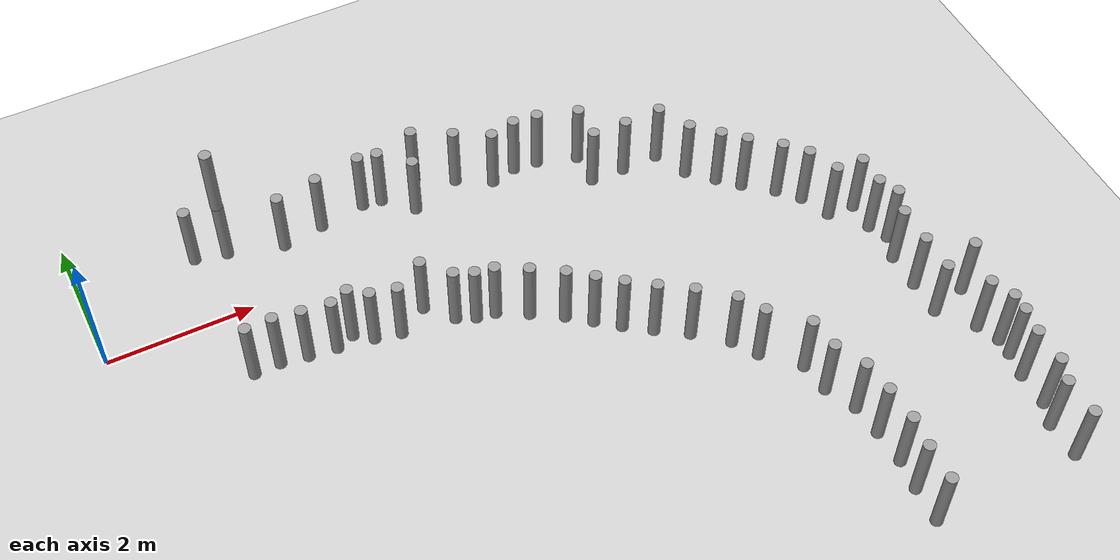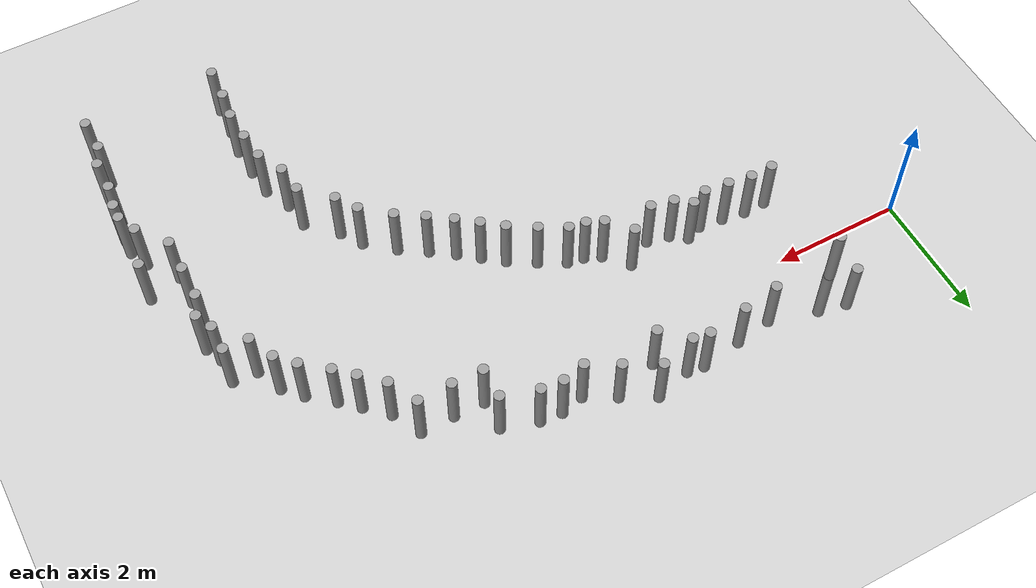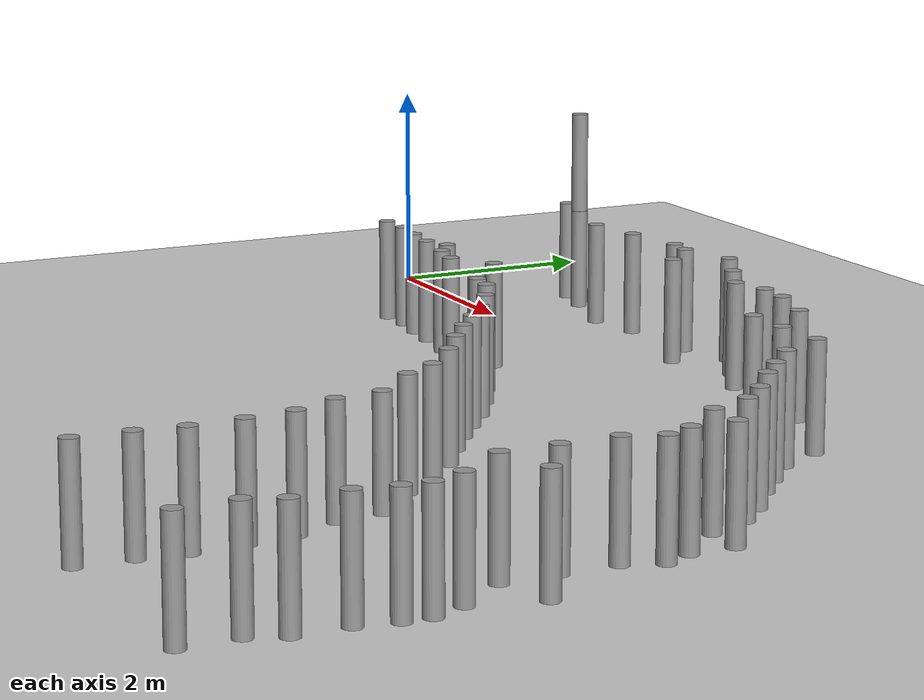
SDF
<sdf version="1.6">
 <world name="default">
  <model name="ground_plane">
   <static>1</static>
   <link name="link">
    <collision name="collision">
     <geometry><plane><normal>0 0 1</normal><size>100 100</size></plane></geometry>
     <surface><friction><ode><mu>100</mu><mu2>50</mu2></ode></friction></surface>
    </collision>
    <visual name="visual">
     <cast_shadows>0</cast_shadows>
     <geometry><plane><normal>0 0 1</normal><size>100 100</size></plane></geometry>
     <material>
      <script><uri>file://media/materials/scripts/gazebo.material</uri><name>Gazebo/Grey</name></script>
     </material>
    </visual>
   </link>
  </model>
  <model name="unit_cylinder_0_clone_clone_0">
   <pose>1.64335 -1.00984 0.499996 0 -0 0.005383</pose>
   <link name="link">
    <inertial>
     <mass>1</mass>
     <inertia><ixx>0.145833</ixx><ixy>0</ixy><ixz>0</ixz><iyy>0.145833</iyy><iyz>0</iyz><izz>0.125</izz></inertia>
    </inertial>
    <collision name="collision">
     <geometry><cylinder><radius>0.0811363</radius><length>1</length></cylinder></geometry>
    </collision>
    <visual name="visual">
     <geometry><cylinder><radius>0.0811363</radius><length>1</length></cylinder></geometry>
     <material>
      <script><name>Gazebo/Grey</name><uri>file://media/materials/scripts/gazebo.material</uri></script>
     </material>
    </visual>
   </link>
  </model>
  <model name="unit_cylinder_0_clone_clone_1">
   <pose>2 -0.999981 0.499996 0 -0 0.001293</pose>
   <link name="link">
    <inertial>
     <mass>1</mass>
     <inertia><ixx>0.145833</ixx><ixy>0</ixy><ixz>0</ixz><iyy>0.145833</iyy><iyz>0</iyz><izz>0.125</izz></inertia>
    </inertial>
    <collision name="collision">
     <geometry><cylinder><radius>0.0811363</radius><length>1</length></cylinder></geometry>
    </collision>
    <visual name="visual">
     <geometry><cylinder><radius>0.0811363</radius><length>1</length></cylinder></geometry>
     <material>
      <script><name>Gazebo/Grey</name><uri>file://media/materials/scripts/gazebo.material</uri></script>
     </material>
    </visual>
   </link>
  </model>
  <model name="unit_cylinder_0_clone_clone_2">
   <pose>2.36742 -1.05536 0.499996 0 -0 0.00225</pose>
   <link name="link">
    <inertial>
     <mass>1</mass>
     <inertia><ixx>0.145833</ixx><ixy>0</ixy><ixz>0</ixz><iyy>0.145833</iyy><iyz>0</iyz><izz>0.125</izz></inertia>
    </inertial>
    <collision name="collision">
     <geometry><cylinder><radius>0.0811363</radius><length>1</length></cylinder></geometry>
    </collision>
    <visual name="visual">
     <geometry><cylinder><radius>0.0811363</radius><length>1</length></cylinder></geometry>
     <material>
      <script><name>Gazebo/Grey</name><uri>file://media/materials/scripts/gazebo.material</uri></script>
     </material>
    </visual>
   </link>
  </model>
  <model name="unit_cylinder_0_clone_clone_3">
   <pose>2.74832 -1.09921 0.499995 0 -0 0.001643</pose>
   <link name="link">
    <inertial>
     <mass>1</mass>
     <inertia><ixx>0.145833</ixx><ixy>0</ixy><ixz>0</ixz><iyy>0.145833</iyy><iyz>0</iyz><izz>0.125</izz></inertia>
    </inertial>
    <collision name="collision">
     <geometry><cylinder><radius>0.0811363</radius><length>1</length></cylinder></geometry>
    </collision>
    <visual name="visual">
     <geometry><cylinder><radius>0.0811363</radius><length>1</length></cylinder></geometry>
     <material>
      <script><name>Gazebo/Grey</name><uri>file://media/materials/scripts/gazebo.material</uri></script>
     </material>
    </visual>
   </link>
  </model>
  <model name="unit_cylinder_0_clone_clone_4">
   <pose>3 -0.999956 0.499995 0 -0 0.002912</pose>
   <link name="link">
    <inertial>
     <mass>1</mass>
     <inertia><ixx>0.145833</ixx><ixy>0</ixy><ixz>0</ixz><iyy>0.145833</iyy><iyz>0</iyz><izz>0.125</izz></inertia>
    </inertial>
    <collision name="collision">
     <geometry><cylinder><radius>0.0811363</radius><length>1</length></cylinder></geometry>
    </collision>
    <visual name="visual">
     <geometry><cylinder><radius>0.0811363</radius><length>1</length></cylinder></geometry>
     <material>
      <script><name>Gazebo/Grey</name><uri>file://media/materials/scripts/gazebo.material</uri></script>
     </material>
    </visual>
   </link>
  </model>
  <model name="unit_cylinder_0_clone_clone_5">
   <pose>3.2365 -1.17147 0.5 0 -0 0.007308</pose>
   <link name="link">
    <inertial>
     <mass>1</mass>
     <inertia><ixx>0.145833</ixx><ixy>0</ixy><ixz>0</ixz><iyy>0.145833</iyy><iyz>0</iyz><izz>0.125</izz></inertia>
    </inertial>
    <collision name="collision">
     <geometry><cylinder><radius>0.0811363</radius><length>1</length></cylinder></geometry>
    </collision>
    <visual name="visual">
     <geometry><cylinder><radius>0.0811363</radius><length>1</length></cylinder></geometry>
     <material>
      <script><name>Gazebo/Grey</name><uri>file://media/materials/scripts/gazebo.material</uri></script>
     </material>
    </visual>
   </link>
  </model>
  <model name="unit_cylinder_0_clone_clone_6">
   <pose>3.58637 -1.24743 0.5 0 -0 0.007195</pose>
   <link name="link">
    <inertial>
     <mass>1</mass>
     <inertia><ixx>0.145833</ixx><ixy>0</ixy><ixz>0</ixz><iyy>0.145833</iyy><iyz>0</iyz><izz>0.125</izz></inertia>
    </inertial>
    <collision name="collision">
     <geometry><cylinder><radius>0.0811363</radius><length>1</length></cylinder></geometry>
    </collision>
    <visual name="visual">
     <geometry><cylinder><radius>0.0811363</radius><length>1</length></cylinder></geometry>
     <material>
      <script><name>Gazebo/Grey</name><uri>file://media/materials/scripts/gazebo.material</uri></script>
     </material>
    </visual>
   </link>
  </model>
  <model name="unit_cylinder_0_clone_clone_7">
   <pose>4.00001 -0.999892 0.5 0 -0 0.007126</pose>
   <link name="link">
    <inertial>
     <mass>1</mass>
     <inertia><ixx>0.145833</ixx><ixy>0</ixy><ixz>0</ixz><iyy>0.145833</iyy><iyz>0</iyz><izz>0.125</izz></inertia>
    </inertial>
    <collision name="collision">
     <geometry><cylinder><radius>0.0811363</radius><length>1</length></cylinder></geometry>
    </collision>
    <visual name="visual">
     <geometry><cylinder><radius>0.0811363</radius><length>1</length></cylinder></geometry>
     <material>
      <script><name>Gazebo/Grey</name><uri>file://media/materials/scripts/gazebo.material</uri></script>
     </material>
    </visual>
   </link>
  </model>
  <model name="unit_cylinder_0_clone_clone_8">
   <pose>4.31062 -1.33961 0.499996 0 -0 0.001173</pose>
   <link name="link">
    <inertial>
     <mass>1</mass>
     <inertia><ixx>0.145833</ixx><ixy>0</ixy><ixz>0</ixz><iyy>0.145833</iyy><iyz>0</iyz><izz>0.125</izz></inertia>
    </inertial>
    <collision name="collision">
     <geometry><cylinder><radius>0.0811363</radius><length>1</length></cylinder></geometry>
    </collision>
    <visual name="visual">
     <geometry><cylinder><radius>0.0811363</radius><length>1</length></cylinder></geometry>
     <material>
      <script><name>Gazebo/Grey</name><uri>file://media/materials/scripts/gazebo.material</uri></script>
     </material>
    </visual>
   </link>
  </model>
  <model name="unit_cylinder_0_clone_clone_9">
   <pose>4.56147 -1.44928 0.499997 0 0 -0.000367</pose>
   <link name="link">
    <inertial>
     <mass>1</mass>
     <inertia><ixx>0.145833</ixx><ixy>0</ixy><ixz>0</ixz><iyy>0.145833</iyy><iyz>0</iyz><izz>0.125</izz></inertia>
    </inertial>
    <collision name="collision">
     <geometry><cylinder><radius>0.0811363</radius><length>1</length></cylinder></geometry>
    </collision>
    <visual name="visual">
     <geometry><cylinder><radius>0.0811363</radius><length>1</length></cylinder></geometry>
     <material>
      <script><name>Gazebo/Grey</name><uri>file://media/materials/scripts/gazebo.material</uri></script>
     </material>
    </visual>
   </link>
  </model>
  <model name="unit_cylinder_0_clone_clone_10">
   <pose>4.81966 -1.49016 0.499997 0 -0 0.001801</pose>
   <link name="link">
    <inertial>
     <mass>1</mass>
     <inertia><ixx>0.145833</ixx><ixy>0</ixy><ixz>0</ixz><iyy>0.145833</iyy><iyz>0</iyz><izz>0.125</izz></inertia>
    </inertial>
    <collision name="collision">
     <geometry><cylinder><radius>0.0811363</radius><length>1</length></cylinder></geometry>
    </collision>
    <visual name="visual">
     <geometry><cylinder><radius>0.0811363</radius><length>1</length></cylinder></geometry>
     <material>
      <script><name>Gazebo/Grey</name><uri>file://media/materials/scripts/gazebo.material</uri></script>
     </material>
    </visual>
   </link>
  </model>
  <model name="unit_cylinder_0_clone_clone_11">
   <pose>5.21247 -1.70304 0.5 0 -0 0.001459</pose>
   <link name="link">
    <inertial>
     <mass>1</mass>
     <inertia><ixx>0.145833</ixx><ixy>0</ixy><ixz>0</ixz><iyy>0.145833</iyy><iyz>0</iyz><izz>0.125</izz></inertia>
    </inertial>
    <collision name="collision">
     <geometry><cylinder><radius>0.0811363</radius><length>1</length></cylinder></geometry>
    </collision>
    <visual name="visual">
     <geometry><cylinder><radius>0.0811363</radius><length>1</length></cylinder></geometry>
     <material>
      <script><name>Gazebo/Grey</name><uri>file://media/materials/scripts/gazebo.material</uri></script>
     </material>
    </visual>
   </link>
  </model>
  <model name="unit_cylinder_0_clone_clone_12">
   <pose>5.60903 -1.94656 0.5 0 -0 0.006621</pose>
   <link name="link">
    <inertial>
     <mass>1</mass>
     <inertia><ixx>0.145833</ixx><ixy>0</ixy><ixz>0</ixz><iyy>0.145833</iyy><iyz>0</iyz><izz>0.125</izz></inertia>
    </inertial>
    <collision name="collision">
     <geometry><cylinder><radius>0.0811363</radius><length>1</length></cylinder></geometry>
    </collision>
    <visual name="visual">
     <geometry><cylinder><radius>0.0811363</radius><length>1</length></cylinder></geometry>
     <material>
      <script><name>Gazebo/Grey</name><uri>file://media/materials/scripts/gazebo.material</uri></script>
     </material>
    </visual>
   </link>
  </model>
  <model name="unit_cylinder_0_clone_clone_13">
   <pose>5.90833 -2.18001 0.499995 0 -0 0.005195</pose>
   <link name="link">
    <inertial>
     <mass>1</mass>
     <inertia><ixx>0.145833</ixx><ixy>0</ixy><ixz>0</ixz><iyy>0.145833</iyy><iyz>0</iyz><izz>0.125</izz></inertia>
    </inertial>
    <collision name="collision">
     <geometry><cylinder><radius>0.0811363</radius><length>1</length></cylinder></geometry>
    </collision>
    <visual name="visual">
     <geometry><cylinder><radius>0.0811363</radius><length>1</length></cylinder></geometry>
     <material>
      <script><name>Gazebo/Grey</name><uri>file://media/materials/scripts/gazebo.material</uri></script>
     </material>
    </visual>
   </link>
  </model>
  <model name="unit_cylinder_0_clone_clone_14">
   <pose>6.20582 -2.41061 0.499996 0 -0 0.001539</pose>
   <link name="link">
    <inertial>
     <mass>1</mass>
     <inertia><ixx>0.145833</ixx><ixy>0</ixy><ixz>0</ixz><iyy>0.145833</iyy><iyz>0</iyz><izz>0.125</izz></inertia>
    </inertial>
    <collision name="collision">
     <geometry><cylinder><radius>0.0811363</radius><length>1</length></cylinder></geometry>
    </collision>
    <visual name="visual">
     <geometry><cylinder><radius>0.0811363</radius><length>1</length></cylinder></geometry>
     <material>
      <script><name>Gazebo/Grey</name><uri>file://media/materials/scripts/gazebo.material</uri></script>
     </material>
    </visual>
   </link>
  </model>
  <model name="unit_cylinder_0_clone_clone_15">
   <pose>6.54594 -2.64942 0.49999 0 -0 0.006857</pose>
   <link name="link">
    <inertial>
     <mass>1</mass>
     <inertia><ixx>0.145833</ixx><ixy>0</ixy><ixz>0</ixz><iyy>0.145833</iyy><iyz>0</iyz><izz>0.125</izz></inertia>
    </inertial>
    <collision name="collision">
     <geometry><cylinder><radius>0.0811363</radius><length>1</length></cylinder></geometry>
    </collision>
    <visual name="visual">
     <geometry><cylinder><radius>0.0811363</radius><length>1</length></cylinder></geometry>
     <material>
      <script><name>Gazebo/Grey</name><uri>file://media/materials/scripts/gazebo.material</uri></script>
     </material>
    </visual>
   </link>
  </model>
  <model name="unit_cylinder_0_clone_clone_16">
   <pose>6.94427 -2.90983 0.49999 0 -0 0.006685</pose>
   <link name="link">
    <inertial>
     <mass>1</mass>
     <inertia><ixx>0.145833</ixx><ixy>0</ixy><ixz>0</ixz><iyy>0.145833</iyy><iyz>0</iyz><izz>0.125</izz></inertia>
    </inertial>
    <collision name="collision">
     <geometry><cylinder><radius>0.0811363</radius><length>1</length></cylinder></geometry>
    </collision>
    <visual name="visual">
     <geometry><cylinder><radius>0.0811363</radius><length>1</length></cylinder></geometry>
     <material>
      <script><name>Gazebo/Grey</name><uri>file://media/materials/scripts/gazebo.material</uri></script>
     </material>
    </visual>
   </link>
  </model>
  <model name="unit_cylinder_0_clone_clone_17">
   <pose>7.35958 -3.25844 0.499996 0 -0 0.002099</pose>
   <link name="link">
    <inertial>
     <mass>1</mass>
     <inertia><ixx>0.145833</ixx><ixy>0</ixy><ixz>0</ixz><iyy>0.145833</iyy><iyz>0</iyz><izz>0.125</izz></inertia>
    </inertial>
    <collision name="collision">
     <geometry><cylinder><radius>0.0811363</radius><length>1</length></cylinder></geometry>
    </collision>
    <visual name="visual">
     <geometry><cylinder><radius>0.0811363</radius><length>1</length></cylinder></geometry>
     <material>
      <script><name>Gazebo/Grey</name><uri>file://media/materials/scripts/gazebo.material</uri></script>
     </material>
    </visual>
   </link>
  </model>
  <model name="unit_cylinder_0_clone_clone_18">
   <pose>7.5713 -3.5818 0.49999 0 -0 0.006562</pose>
   <link name="link">
    <inertial>
     <mass>1</mass>
     <inertia><ixx>0.145833</ixx><ixy>0</ixy><ixz>0</ixz><iyy>0.145833</iyy><iyz>0</iyz><izz>0.125</izz></inertia>
    </inertial>
    <collision name="collision">
     <geometry><cylinder><radius>0.0811363</radius><length>1</length></cylinder></geometry>
    </collision>
    <visual name="visual">
     <geometry><cylinder><radius>0.0811363</radius><length>1</length></cylinder></geometry>
     <material>
      <script><name>Gazebo/Grey</name><uri>file://media/materials/scripts/gazebo.material</uri></script>
     </material>
    </visual>
   </link>
  </model>
  <model name="unit_cylinder_0_clone_clone_19">
   <pose>8.00001 -3.99991 0.5 0 -0 0.005774</pose>
   <link name="link">
    <inertial>
     <mass>1</mass>
     <inertia><ixx>0.145833</ixx><ixy>0</ixy><ixz>0</ixz><iyy>0.145833</iyy><iyz>0</iyz><izz>0.125</izz></inertia>
    </inertial>
    <collision name="collision">
     <geometry><cylinder><radius>0.0811363</radius><length>1</length></cylinder></geometry>
    </collision>
    <visual name="visual">
     <geometry><cylinder><radius>0.0811363</radius><length>1</length></cylinder></geometry>
     <material>
      <script><name>Gazebo/Grey</name><uri>file://media/materials/scripts/gazebo.material</uri></script>
     </material>
    </visual>
   </link>
  </model>
  <model name="unit_cylinder_0_clone_clone_20">
   <pose>8.05288 -4.42291 0.49999 0 -0 0.006538</pose>
   <link name="link">
    <inertial>
     <mass>1</mass>
     <inertia><ixx>0.145833</ixx><ixy>0</ixy><ixz>0</ixz><iyy>0.145833</iyy><iyz>0</iyz><izz>0.125</izz></inertia>
    </inertial>
    <collision name="collision">
     <geometry><cylinder><radius>0.0811363</radius><length>1</length></cylinder></geometry>
    </collision>
    <visual name="visual">
     <geometry><cylinder><radius>0.0811363</radius><length>1</length></cylinder></geometry>
     <material>
      <script><name>Gazebo/Grey</name><uri>file://media/materials/scripts/gazebo.material</uri></script>
     </material>
    </visual>
   </link>
  </model>
  <model name="unit_cylinder_0_clone_clone_21">
   <pose>8.2496 -4.83508 0.499996 0 -0 0.001923</pose>
   <link name="link">
    <inertial>
     <mass>1</mass>
     <inertia><ixx>0.145833</ixx><ixy>0</ixy><ixz>0</ixz><iyy>0.145833</iyy><iyz>0</iyz><izz>0.125</izz></inertia>
    </inertial>
    <collision name="collision">
     <geometry><cylinder><radius>0.0811363</radius><length>1</length></cylinder></geometry>
    </collision>
    <visual name="visual">
     <geometry><cylinder><radius>0.0811363</radius><length>1</length></cylinder></geometry>
     <material>
      <script><name>Gazebo/Grey</name><uri>file://media/materials/scripts/gazebo.material</uri></script>
     </material>
    </visual>
   </link>
  </model>
  <model name="unit_cylinder_0_clone_clone_22">
   <pose>8.29837 -5.26887 0.49999 0 -0 0.006525</pose>
   <link name="link">
    <inertial>
     <mass>1</mass>
     <inertia><ixx>0.145833</ixx><ixy>0</ixy><ixz>0</ixz><iyy>0.145833</iyy><iyz>0</iyz><izz>0.125</izz></inertia>
    </inertial>
    <collision name="collision">
     <geometry><cylinder><radius>0.0811363</radius><length>1</length></cylinder></geometry>
    </collision>
    <visual name="visual">
     <geometry><cylinder><radius>0.0811363</radius><length>1</length></cylinder></geometry>
     <material>
      <script><name>Gazebo/Grey</name><uri>file://media/materials/scripts/gazebo.material</uri></script>
     </material>
    </visual>
   </link>
  </model>
  <model name="unit_cylinder_0_clone_clone_23">
   <pose>8.32518 -5.7385 0.499997 0 -0 0.002395</pose>
   <link name="link">
    <inertial>
     <mass>1</mass>
     <inertia><ixx>0.145833</ixx><ixy>0</ixy><ixz>0</ixz><iyy>0.145833</iyy><iyz>0</iyz><izz>0.125</izz></inertia>
    </inertial>
    <collision name="collision">
     <geometry><cylinder><radius>0.0811363</radius><length>1</length></cylinder></geometry>
    </collision>
    <visual name="visual">
     <geometry><cylinder><radius>0.0811363</radius><length>1</length></cylinder></geometry>
     <material>
      <script><name>Gazebo/Grey</name><uri>file://media/materials/scripts/gazebo.material</uri></script>
     </material>
    </visual>
   </link>
  </model>
  <model name="unit_cylinder_0_clone_clone_24">
   <pose>8.27565 -6.15295 0.5 0 -0 0.006248</pose>
   <link name="link">
    <inertial>
     <mass>1</mass>
     <inertia><ixx>0.145833</ixx><ixy>0</ixy><ixz>0</ixz><iyy>0.145833</iyy><iyz>0</iyz><izz>0.125</izz></inertia>
    </inertial>
    <collision name="collision">
     <geometry><cylinder><radius>0.0811363</radius><length>1</length></cylinder></geometry>
    </collision>
    <visual name="visual">
     <geometry><cylinder><radius>0.0811363</radius><length>1</length></cylinder></geometry>
     <material>
      <script><name>Gazebo/Grey</name><uri>file://media/materials/scripts/gazebo.material</uri></script>
     </material>
    </visual>
   </link>
  </model>
  <model name="unit_cylinder_0_clone_clone_25">
   <pose>8.25488 -6.63845 0.499996 0 -0 0.000607</pose>
   <link name="link">
    <inertial>
     <mass>1</mass>
     <inertia><ixx>0.145833</ixx><ixy>0</ixy><ixz>0</ixz><iyy>0.145833</iyy><iyz>0</iyz><izz>0.125</izz></inertia>
    </inertial>
    <collision name="collision">
     <geometry><cylinder><radius>0.0811363</radius><length>1</length></cylinder></geometry>
    </collision>
    <visual name="visual">
     <geometry><cylinder><radius>0.0811363</radius><length>1</length></cylinder></geometry>
     <material>
      <script><name>Gazebo/Grey</name><uri>file://media/materials/scripts/gazebo.material</uri></script>
     </material>
    </visual>
   </link>
  </model>
  <model name="unit_cylinder_0_clone_clone_121">
   <pose>2.74629 0.79068 0.499996 0 -0 0.004386</pose>
   <link name="link">
    <inertial>
     <mass>1</mass>
     <inertia><ixx>0.145833</ixx><ixy>0</ixy><ixz>0</ixz><iyy>0.145833</iyy><iyz>0</iyz><izz>0.125</izz></inertia>
    </inertial>
    <collision name="collision">
     <geometry><cylinder><radius>0.0811363</radius><length>1</length></cylinder></geometry>
    </collision>
    <visual name="visual">
     <geometry><cylinder><radius>0.0811363</radius><length>1</length></cylinder></geometry>
     <material>
      <script><name>Gazebo/Grey</name><uri>file://media/materials/scripts/gazebo.material</uri></script>
     </material>
    </visual>
   </link>
  </model>
  <model name="unit_cylinder_0_clone_clone_122">
   <pose>6.11325 0.666804 0.5 0 -0 0.00601</pose>
   <link name="link">
    <inertial>
     <mass>1</mass>
     <inertia><ixx>0.145833</ixx><ixy>0</ixy><ixz>0</ixz><iyy>0.145833</iyy><iyz>0</iyz><izz>0.125</izz></inertia>
    </inertial>
    <collision name="collision">
     <geometry><cylinder><radius>0.0811363</radius><length>1</length></cylinder></geometry>
    </collision>
    <visual name="visual">
     <geometry><cylinder><radius>0.0811363</radius><length>1</length></cylinder></geometry>
     <material>
      <script><name>Gazebo/Grey</name><uri>file://media/materials/scripts/gazebo.material</uri></script>
     </material>
    </visual>
   </link>
  </model>
  <model name="unit_cylinder_0_clone_clone_123">
   <pose>8.81596 -0.995066 0.499993 0 -0 0.00315</pose>
   <link name="link">
    <inertial>
     <mass>1</mass>
     <inertia><ixx>0.145833</ixx><ixy>0</ixy><ixz>0</ixz><iyy>0.145833</iyy><iyz>0</iyz><izz>0.125</izz></inertia>
    </inertial>
    <collision name="collision">
     <geometry><cylinder><radius>0.0811363</radius><length>1</length></cylinder></geometry>
    </collision>
    <visual name="visual">
     <geometry><cylinder><radius>0.0811363</radius><length>1</length></cylinder></geometry>
     <material>
      <script><name>Gazebo/Grey</name><uri>file://media/materials/scripts/gazebo.material</uri></script>
     </material>
    </visual>
   </link>
  </model>
  <model name="unit_cylinder_0_clone_clone_124">
   <pose>10.3508 -4.45204 0.49999 0 -0 0.005877</pose>
   <link name="link">
    <inertial>
     <mass>1</mass>
     <inertia><ixx>0.145833</ixx><ixy>0</ixy><ixz>0</ixz><iyy>0.145833</iyy><iyz>0</iyz><izz>0.125</izz></inertia>
    </inertial>
    <collision name="collision">
     <geometry><cylinder><radius>0.0811363</radius><length>1</length></cylinder></geometry>
    </collision>
    <visual name="visual">
     <geometry><cylinder><radius>0.0811363</radius><length>1</length></cylinder></geometry>
     <material>
      <script><name>Gazebo/Grey</name><uri>file://media/materials/scripts/gazebo.material</uri></script>
     </material>
    </visual>
   </link>
  </model>
  <model name="unit_cylinder_0_clone_clone_163">
   <pose>1.99799 1.00134 1.5 -1.1e-05 -1.7e-05 0.018513</pose>
   <link name="link">
    <inertial>
     <mass>1</mass>
     <inertia><ixx>0.145833</ixx><ixy>0</ixy><ixz>0</ixz><iyy>0.145833</iyy><iyz>0</iyz><izz>0.125</izz></inertia>
    </inertial>
    <collision name="collision">
     <geometry><cylinder><radius>0.0811363</radius><length>1</length></cylinder></geometry>
    </collision>
    <visual name="visual">
     <geometry><cylinder><radius>0.0811363</radius><length>1</length></cylinder></geometry>
     <material>
      <script><name>Gazebo/Grey</name><uri>file://media/materials/scripts/gazebo.material</uri></script>
     </material>
    </visual>
   </link>
  </model>
  <model name="unit_cylinder_0_clone_clone_165">
   <pose>1.57347 1.09407 0.5 0 -0 0.004804</pose>
   <link name="link">
    <inertial>
     <mass>1</mass>
     <inertia><ixx>0.145833</ixx><ixy>0</ixy><ixz>0</ixz><iyy>0.145833</iyy><iyz>0</iyz><izz>0.125</izz></inertia>
    </inertial>
    <collision name="collision">
     <geometry><cylinder><radius>0.0811363</radius><length>1</length></cylinder></geometry>
    </collision>
    <visual name="visual">
     <geometry><cylinder><radius>0.0811363</radius><length>1</length></cylinder></geometry>
     <material>
      <script><name>Gazebo/Grey</name><uri>file://media/materials/scripts/gazebo.material</uri></script>
     </material>
    </visual>
   </link>
  </model>
  <model name="unit_cylinder_0_clone_clone_167">
   <pose>2.0041 0.998829 0.5 -1e-06 -5e-06 0.004868</pose>
   <link name="link">
    <inertial>
     <mass>1</mass>
     <inertia><ixx>0.145833</ixx><ixy>0</ixy><ixz>0</ixz><iyy>0.145833</iyy><iyz>0</iyz><izz>0.125</izz></inertia>
    </inertial>
    <collision name="collision">
     <geometry><cylinder><radius>0.0811363</radius><length>1</length></cylinder></geometry>
    </collision>
    <visual name="visual">
     <geometry><cylinder><radius>0.0811363</radius><length>1</length></cylinder></geometry>
     <material>
      <script><name>Gazebo/Grey</name><uri>file://media/materials/scripts/gazebo.material</uri></script>
     </material>
    </visual>
   </link>
  </model>
  <model name="unit_cylinder_0_clone_clone_168">
   <pose>3.32033 0.883445 0.499996 0 -0 0.003393</pose>
   <link name="link">
    <inertial>
     <mass>1</mass>
     <inertia><ixx>0.145833</ixx><ixy>0</ixy><ixz>0</ixz><iyy>0.145833</iyy><iyz>0</iyz><izz>0.125</izz></inertia>
    </inertial>
    <collision name="collision">
     <geometry><cylinder><radius>0.0811363</radius><length>1</length></cylinder></geometry>
    </collision>
    <visual name="visual">
     <geometry><cylinder><radius>0.0811363</radius><length>1</length></cylinder></geometry>
     <material>
      <script><name>Gazebo/Grey</name><uri>file://media/materials/scripts/gazebo.material</uri></script>
     </material>
    </visual>
   </link>
  </model>
  <model name="unit_cylinder_0_clone_clone_169">
   <pose>3.96307 0.984903 0.499997 0 -0 0.003146</pose>
   <link name="link">
    <inertial>
     <mass>1</mass>
     <inertia><ixx>0.145833</ixx><ixy>0</ixy><ixz>0</ixz><iyy>0.145833</iyy><iyz>0</iyz><izz>0.125</izz></inertia>
    </inertial>
    <collision name="collision">
     <geometry><cylinder><radius>0.0811363</radius><length>1</length></cylinder></geometry>
    </collision>
    <visual name="visual">
     <geometry><cylinder><radius>0.0811363</radius><length>1</length></cylinder></geometry>
     <material>
      <script><name>Gazebo/Grey</name><uri>file://media/materials/scripts/gazebo.material</uri></script>
     </material>
    </visual>
   </link>
  </model>
  <model name="unit_cylinder_0_clone_clone_170">
   <pose>4.59409 0.600679 0.499997 0 -0 0.003146</pose>
   <link name="link">
    <inertial>
     <mass>1</mass>
     <inertia><ixx>0.145833</ixx><ixy>0</ixy><ixz>0</ixz><iyy>0.145833</iyy><iyz>0</iyz><izz>0.125</izz></inertia>
    </inertial>
    <collision name="collision">
     <geometry><cylinder><radius>0.0811363</radius><length>1</length></cylinder></geometry>
    </collision>
    <visual name="visual">
     <geometry><cylinder><radius>0.0811363</radius><length>1</length></cylinder></geometry>
     <material>
      <script><name>Gazebo/Grey</name><uri>file://media/materials/scripts/gazebo.material</uri></script>
     </material>
    </visual>
   </link>
  </model>
  <model name="unit_cylinder_0_clone_clone_171">
   <pose>5.2919 0.832873 0.499997 0 -0 0.003147</pose>
   <link name="link">
    <inertial>
     <mass>1</mass>
     <inertia><ixx>0.145833</ixx><ixy>0</ixy><ixz>0</ixz><iyy>0.145833</iyy><iyz>0</iyz><izz>0.125</izz></inertia>
    </inertial>
    <collision name="collision">
     <geometry><cylinder><radius>0.0811363</radius><length>1</length></cylinder></geometry>
    </collision>
    <visual name="visual">
     <geometry><cylinder><radius>0.0811363</radius><length>1</length></cylinder></geometry>
     <material>
      <script><name>Gazebo/Grey</name><uri>file://media/materials/scripts/gazebo.material</uri></script>
     </material>
    </visual>
   </link>
  </model>
  <model name="unit_cylinder_0_clone_clone_172">
   <pose>5.75239 0.581198 0.499995 0 -0 0.00338</pose>
   <link name="link">
    <inertial>
     <mass>1</mass>
     <inertia><ixx>0.145833</ixx><ixy>0</ixy><ixz>0</ixz><iyy>0.145833</iyy><iyz>0</iyz><izz>0.125</izz></inertia>
    </inertial>
    <collision name="collision">
     <geometry><cylinder><radius>0.0811363</radius><length>1</length></cylinder></geometry>
    </collision>
    <visual name="visual">
     <geometry><cylinder><radius>0.0811363</radius><length>1</length></cylinder></geometry>
     <material>
      <script><name>Gazebo/Grey</name><uri>file://media/materials/scripts/gazebo.material</uri></script>
     </material>
    </visual>
   </link>
  </model>
  <model name="unit_cylinder_0_clone_clone_173">
   <pose>4.78598 1.10146 0.499995 0 -0 0.00338</pose>
   <link name="link">
    <inertial>
     <mass>1</mass>
     <inertia><ixx>0.145833</ixx><ixy>0</ixy><ixz>0</ixz><iyy>0.145833</iyy><iyz>0</iyz><izz>0.125</izz></inertia>
    </inertial>
    <collision name="collision">
     <geometry><cylinder><radius>0.0811363</radius><length>1</length></cylinder></geometry>
    </collision>
    <visual name="visual">
     <geometry><cylinder><radius>0.0811363</radius><length>1</length></cylinder></geometry>
     <material>
      <script><name>Gazebo/Grey</name><uri>file://media/materials/scripts/gazebo.material</uri></script>
     </material>
    </visual>
   </link>
  </model>
  <model name="unit_cylinder_0_clone_clone_174">
   <pose>4.22775 0.946925 0.49999 0 -0 0.004616</pose>
   <link name="link">
    <inertial>
     <mass>1</mass>
     <inertia><ixx>0.145833</ixx><ixy>0</ixy><ixz>0</ixz><iyy>0.145833</iyy><iyz>0</iyz><izz>0.125</izz></inertia>
    </inertial>
    <collision name="collision">
     <geometry><cylinder><radius>0.0811363</radius><length>1</length></cylinder></geometry>
    </collision>
    <visual name="visual">
     <geometry><cylinder><radius>0.0811363</radius><length>1</length></cylinder></geometry>
     <material>
      <script><name>Gazebo/Grey</name><uri>file://media/materials/scripts/gazebo.material</uri></script>
     </material>
    </visual>
   </link>
  </model>
  <model name="unit_cylinder_0_clone_clone_175">
   <pose>6.45343 0.636132 0.49999 0 -0 0.004601</pose>
   <link name="link">
    <inertial>
     <mass>1</mass>
     <inertia><ixx>0.145833</ixx><ixy>0</ixy><ixz>0</ixz><iyy>0.145833</iyy><iyz>0</iyz><izz>0.125</izz></inertia>
    </inertial>
    <collision name="collision">
     <geometry><cylinder><radius>0.0811363</radius><length>1</length></cylinder></geometry>
    </collision>
    <visual name="visual">
     <geometry><cylinder><radius>0.0811363</radius><length>1</length></cylinder></geometry>
     <material>
      <script><name>Gazebo/Grey</name><uri>file://media/materials/scripts/gazebo.material</uri></script>
     </material>
    </visual>
   </link>
  </model>
  <model name="unit_cylinder_0_clone_clone_176">
   <pose>7 0 0.499995 0 -0 0.003367</pose>
   <link name="link">
    <inertial>
     <mass>1</mass>
     <inertia><ixx>0.145833</ixx><ixy>0</ixy><ixz>0</ixz><iyy>0.145833</iyy><iyz>0</iyz><izz>0.125</izz></inertia>
    </inertial>
    <collision name="collision">
     <geometry><cylinder><radius>0.0811363</radius><length>1</length></cylinder></geometry>
    </collision>
    <visual name="visual">
     <geometry><cylinder><radius>0.0811363</radius><length>1</length></cylinder></geometry>
     <material>
      <script><name>Gazebo/Grey</name><uri>file://media/materials/scripts/gazebo.material</uri></script>
     </material>
    </visual>
   </link>
  </model>
  <model name="unit_cylinder_0_clone_clone_177">
   <pose>7 0.46326 0.49999 0 -0 0.004568</pose>
   <link name="link">
    <inertial>
     <mass>1</mass>
     <inertia><ixx>0.145833</ixx><ixy>0</ixy><ixz>0</ixz><iyy>0.145833</iyy><iyz>0</iyz><izz>0.125</izz></inertia>
    </inertial>
    <collision name="collision">
     <geometry><cylinder><radius>0.0811363</radius><length>1</length></cylinder></geometry>
    </collision>
    <visual name="visual">
     <geometry><cylinder><radius>0.0811363</radius><length>1</length></cylinder></geometry>
     <material>
      <script><name>Gazebo/Grey</name><uri>file://media/materials/scripts/gazebo.material</uri></script>
     </material>
    </visual>
   </link>
  </model>
  <model name="unit_cylinder_0_clone_clone_178">
   <pose>7.47716 -0.013139 0.49999 0 -0 0.004552</pose>
   <link name="link">
    <inertial>
     <mass>1</mass>
     <inertia><ixx>0.145833</ixx><ixy>0</ixy><ixz>0</ixz><iyy>0.145833</iyy><iyz>0</iyz><izz>0.125</izz></inertia>
    </inertial>
    <collision name="collision">
     <geometry><cylinder><radius>0.0811363</radius><length>1</length></cylinder></geometry>
    </collision>
    <visual name="visual">
     <geometry><cylinder><radius>0.0811363</radius><length>1</length></cylinder></geometry>
     <material>
      <script><name>Gazebo/Grey</name><uri>file://media/materials/scripts/gazebo.material</uri></script>
     </material>
    </visual>
   </link>
  </model>
  <model name="unit_cylinder_0_clone_clone_179">
   <pose>8 1.8e-05 0.5 0 -0 0.004538</pose>
   <link name="link">
    <inertial>
     <mass>1</mass>
     <inertia><ixx>0.145833</ixx><ixy>0</ixy><ixz>0</ixz><iyy>0.145833</iyy><iyz>0</iyz><izz>0.125</izz></inertia>
    </inertial>
    <collision name="collision">
     <geometry><cylinder><radius>0.0811363</radius><length>1</length></cylinder></geometry>
    </collision>
    <visual name="visual">
     <geometry><cylinder><radius>0.0811363</radius><length>1</length></cylinder></geometry>
     <material>
      <script><name>Gazebo/Grey</name><uri>file://media/materials/scripts/gazebo.material</uri></script>
     </material>
    </visual>
   </link>
  </model>
  <model name="unit_cylinder_0_clone_clone_180">
   <pose>8.22874 -0.445794 0.5 0 -0 0.00452</pose>
   <link name="link">
    <inertial>
     <mass>1</mass>
     <inertia><ixx>0.145833</ixx><ixy>0</ixy><ixz>0</ixz><iyy>0.145833</iyy><iyz>0</iyz><izz>0.125</izz></inertia>
    </inertial>
    <collision name="collision">
     <geometry><cylinder><radius>0.0811363</radius><length>1</length></cylinder></geometry>
    </collision>
    <visual name="visual">
     <geometry><cylinder><radius>0.0811363</radius><length>1</length></cylinder></geometry>
     <material>
      <script><name>Gazebo/Grey</name><uri>file://media/materials/scripts/gazebo.material</uri></script>
     </material>
    </visual>
   </link>
  </model>
  <model name="unit_cylinder_0_clone_clone_181">
   <pose>8.54942 -0.749994 0.5 0 -0 0.004495</pose>
   <link name="link">
    <inertial>
     <mass>1</mass>
     <inertia><ixx>0.145833</ixx><ixy>0</ixy><ixz>0</ixz><iyy>0.145833</iyy><iyz>0</iyz><izz>0.125</izz></inertia>
    </inertial>
    <collision name="collision">
     <geometry><cylinder><radius>0.0811363</radius><length>1</length></cylinder></geometry>
    </collision>
    <visual name="visual">
     <geometry><cylinder><radius>0.0811363</radius><length>1</length></cylinder></geometry>
     <material>
      <script><name>Gazebo/Grey</name><uri>file://media/materials/scripts/gazebo.material</uri></script>
     </material>
    </visual>
   </link>
  </model>
  <model name="unit_cylinder_0_clone_clone_182">
   <pose>9.18782 -1.29887 0.5 0 -0 0.004433</pose>
   <link name="link">
    <inertial>
     <mass>1</mass>
     <inertia><ixx>0.145833</ixx><ixy>0</ixy><ixz>0</ixz><iyy>0.145833</iyy><iyz>0</iyz><izz>0.125</izz></inertia>
    </inertial>
    <collision name="collision">
     <geometry><cylinder><radius>0.0811363</radius><length>1</length></cylinder></geometry>
    </collision>
    <visual name="visual">
     <geometry><cylinder><radius>0.0811363</radius><length>1</length></cylinder></geometry>
     <material>
      <script><name>Gazebo/Grey</name><uri>file://media/materials/scripts/gazebo.material</uri></script>
     </material>
    </visual>
   </link>
  </model>
  <model name="unit_cylinder_0_clone_clone_183">
   <pose>9.44105 -1.56734 0.49999 0 -0 0.004406</pose>
   <link name="link">
    <inertial>
     <mass>1</mass>
     <inertia><ixx>0.145833</ixx><ixy>0</ixy><ixz>0</ixz><iyy>0.145833</iyy><iyz>0</iyz><izz>0.125</izz></inertia>
    </inertial>
    <collision name="collision">
     <geometry><cylinder><radius>0.0811363</radius><length>1</length></cylinder></geometry>
    </collision>
    <visual name="visual">
     <geometry><cylinder><radius>0.0811363</radius><length>1</length></cylinder></geometry>
     <material>
      <script><name>Gazebo/Grey</name><uri>file://media/materials/scripts/gazebo.material</uri></script>
     </material>
    </visual>
   </link>
  </model>
  <model name="unit_cylinder_0_clone_clone_184">
   <pose>10 -1.99998 0.49999 0 -0 0.004393</pose>
   <link name="link">
    <inertial>
     <mass>1</mass>
     <inertia><ixx>0.145833</ixx><ixy>0</ixy><ixz>0</ixz><iyy>0.145833</iyy><iyz>0</iyz><izz>0.125</izz></inertia>
    </inertial>
    <collision name="collision">
     <geometry><cylinder><radius>0.0811363</radius><length>1</length></cylinder></geometry>
    </collision>
    <visual name="visual">
     <geometry><cylinder><radius>0.0811363</radius><length>1</length></cylinder></geometry>
     <material>
      <script><name>Gazebo/Grey</name><uri>file://media/materials/scripts/gazebo.material</uri></script>
     </material>
    </visual>
   </link>
  </model>
  <model name="unit_cylinder_0_clone_clone_185">
   <pose>9.61901 -1.97647 0.49999 0 -0 0.004376</pose>
   <link name="link">
    <inertial>
     <mass>1</mass>
     <inertia><ixx>0.145833</ixx><ixy>0</ixy><ixz>0</ixz><iyy>0.145833</iyy><iyz>0</iyz><izz>0.125</izz></inertia>
    </inertial>
    <collision name="collision">
     <geometry><cylinder><radius>0.0811363</radius><length>1</length></cylinder></geometry>
    </collision>
    <visual name="visual">
     <geometry><cylinder><radius>0.0811363</radius><length>1</length></cylinder></geometry>
     <material>
      <script><name>Gazebo/Grey</name><uri>file://media/materials/scripts/gazebo.material</uri></script>
     </material>
    </visual>
   </link>
  </model>
  <model name="unit_cylinder_0_clone_clone_186">
   <pose>10 -2.40421 0.499993 0 -0 0.003145</pose>
   <link name="link">
    <inertial>
     <mass>1</mass>
     <inertia><ixx>0.145833</ixx><ixy>0</ixy><ixz>0</ixz><iyy>0.145833</iyy><iyz>0</iyz><izz>0.125</izz></inertia>
    </inertial>
    <collision name="collision">
     <geometry><cylinder><radius>0.0811363</radius><length>1</length></cylinder></geometry>
    </collision>
    <visual name="visual">
     <geometry><cylinder><radius>0.0811363</radius><length>1</length></cylinder></geometry>
     <material>
      <script><name>Gazebo/Grey</name><uri>file://media/materials/scripts/gazebo.material</uri></script>
     </material>
    </visual>
   </link>
  </model>
  <model name="unit_cylinder_0_clone_clone_187">
   <pose>10.1241 -2.67177 0.49999 0 -0 0.004346</pose>
   <link name="link">
    <inertial>
     <mass>1</mass>
     <inertia><ixx>0.145833</ixx><ixy>0</ixy><ixz>0</ixz><iyy>0.145833</iyy><iyz>0</iyz><izz>0.125</izz></inertia>
    </inertial>
    <collision name="collision">
     <geometry><cylinder><radius>0.0811363</radius><length>1</length></cylinder></geometry>
    </collision>
    <visual name="visual">
     <geometry><cylinder><radius>0.0811363</radius><length>1</length></cylinder></geometry>
     <material>
      <script><name>Gazebo/Grey</name><uri>file://media/materials/scripts/gazebo.material</uri></script>
     </material>
    </visual>
   </link>
  </model>
  <model name="unit_cylinder_0_clone_clone_188">
   <pose>10 -3 0.499995 0 -0 0.003326</pose>
   <link name="link">
    <inertial>
     <mass>1</mass>
     <inertia><ixx>0.145833</ixx><ixy>0</ixy><ixz>0</ixz><iyy>0.145833</iyy><iyz>0</iyz><izz>0.125</izz></inertia>
    </inertial>
    <collision name="collision">
     <geometry><cylinder><radius>0.0811363</radius><length>1</length></cylinder></geometry>
    </collision>
    <visual name="visual">
     <geometry><cylinder><radius>0.0811363</radius><length>1</length></cylinder></geometry>
     <material>
      <script><name>Gazebo/Grey</name><uri>file://media/materials/scripts/gazebo.material</uri></script>
     </material>
    </visual>
   </link>
  </model>
  <model name="unit_cylinder_0_clone_clone_189">
   <pose>10 -3.50503 0.5 0 -0 0.004322</pose>
   <link name="link">
    <inertial>
     <mass>1</mass>
     <inertia><ixx>0.145833</ixx><ixy>0</ixy><ixz>0</ixz><iyy>0.145833</iyy><iyz>0</iyz><izz>0.125</izz></inertia>
    </inertial>
    <collision name="collision">
     <geometry><cylinder><radius>0.0811363</radius><length>1</length></cylinder></geometry>
    </collision>
    <visual name="visual">
     <geometry><cylinder><radius>0.0811363</radius><length>1</length></cylinder></geometry>
     <material>
      <script><name>Gazebo/Grey</name><uri>file://media/materials/scripts/gazebo.material</uri></script>
     </material>
    </visual>
   </link>
  </model>
  <model name="unit_cylinder_0_clone_clone_190">
   <pose>10 -3.99999 0.49999 0 -0 0.004308</pose>
   <link name="link">
    <inertial>
     <mass>1</mass>
     <inertia><ixx>0.145833</ixx><ixy>0</ixy><ixz>0</ixz><iyy>0.145833</iyy><iyz>0</iyz><izz>0.125</izz></inertia>
    </inertial>
    <collision name="collision">
     <geometry><cylinder><radius>0.0811363</radius><length>1</length></cylinder></geometry>
    </collision>
    <visual name="visual">
     <geometry><cylinder><radius>0.0811363</radius><length>1</length></cylinder></geometry>
     <material>
      <script><name>Gazebo/Grey</name><uri>file://media/materials/scripts/gazebo.material</uri></script>
     </material>
    </visual>
   </link>
  </model>
  <model name="unit_cylinder_0_clone_clone_191">
   <pose>10.5166 -3.85164 0.49999 0 -0 0.004289</pose>
   <link name="link">
    <inertial>
     <mass>1</mass>
     <inertia><ixx>0.145833</ixx><ixy>0</ixy><ixz>0</ixz><iyy>0.145833</iyy><iyz>0</iyz><izz>0.125</izz></inertia>
    </inertial>
    <collision name="collision">
     <geometry><cylinder><radius>0.0811363</radius><length>1</length></cylinder></geometry>
    </collision>
    <visual name="visual">
     <geometry><cylinder><radius>0.0811363</radius><length>1</length></cylinder></geometry>
     <material>
      <script><name>Gazebo/Grey</name><uri>file://media/materials/scripts/gazebo.material</uri></script>
     </material>
    </visual>
   </link>
  </model>
  <model name="unit_cylinder_0_clone_clone_192">
   <pose>10.4832 -4.75829 0.49999 0 -0 0.004263</pose>
   <link name="link">
    <inertial>
     <mass>1</mass>
     <inertia><ixx>0.145833</ixx><ixy>0</ixy><ixz>0</ixz><iyy>0.145833</iyy><iyz>0</iyz><izz>0.125</izz></inertia>
    </inertial>
    <collision name="collision">
     <geometry><cylinder><radius>0.0811363</radius><length>1</length></cylinder></geometry>
    </collision>
    <visual name="visual">
     <geometry><cylinder><radius>0.0811363</radius><length>1</length></cylinder></geometry>
     <material>
      <script><name>Gazebo/Grey</name><uri>file://media/materials/scripts/gazebo.material</uri></script>
     </material>
    </visual>
   </link>
  </model>
  <model name="unit_cylinder_0_clone_clone_193">
   <pose>10.4753 -4.99999 0.49999 0 -0 0.004243</pose>
   <link name="link">
    <inertial>
     <mass>1</mass>
     <inertia><ixx>0.145833</ixx><ixy>0</ixy><ixz>0</ixz><iyy>0.145833</iyy><iyz>0</iyz><izz>0.125</izz></inertia>
    </inertial>
    <collision name="collision">
     <geometry><cylinder><radius>0.0811363</radius><length>1</length></cylinder></geometry>
    </collision>
    <visual name="visual">
     <geometry><cylinder><radius>0.0811363</radius><length>1</length></cylinder></geometry>
     <material>
      <script><name>Gazebo/Grey</name><uri>file://media/materials/scripts/gazebo.material</uri></script>
     </material>
    </visual>
   </link>
  </model>
  <model name="unit_cylinder_0_clone_clone_194">
   <pose>10.4162 -5.34773 0.49999 0 -0 0.00422</pose>
   <link name="link">
    <inertial>
     <mass>1</mass>
     <inertia><ixx>0.145833</ixx><ixy>0</ixy><ixz>0</ixz><iyy>0.145833</iyy><iyz>0</iyz><izz>0.125</izz></inertia>
    </inertial>
    <collision name="collision">
     <geometry><cylinder><radius>0.0811363</radius><length>1</length></cylinder></geometry>
    </collision>
    <visual name="visual">
     <geometry><cylinder><radius>0.0811363</radius><length>1</length></cylinder></geometry>
     <material>
      <script><name>Gazebo/Grey</name><uri>file://media/materials/scripts/gazebo.material</uri></script>
     </material>
    </visual>
   </link>
  </model>
  <model name="unit_cylinder_0_clone_clone_195">
   <pose>10.4187 -5.81609 0.49999 0 -0 0.004195</pose>
   <link name="link">
    <inertial>
     <mass>1</mass>
     <inertia><ixx>0.145833</ixx><ixy>0</ixy><ixz>0</ixz><iyy>0.145833</iyy><iyz>0</iyz><izz>0.125</izz></inertia>
    </inertial>
    <collision name="collision">
     <geometry><cylinder><radius>0.0811363</radius><length>1</length></cylinder></geometry>
    </collision>
    <visual name="visual">
     <geometry><cylinder><radius>0.0811363</radius><length>1</length></cylinder></geometry>
     <material>
      <script><name>Gazebo/Grey</name><uri>file://media/materials/scripts/gazebo.material</uri></script>
     </material>
    </visual>
   </link>
  </model>
  <model name="unit_cylinder_0_clone_clone_196">
   <pose>10.2969 -6.11844 0.49999 0 -0 0.004155</pose>
   <link name="link">
    <inertial>
     <mass>1</mass>
     <inertia><ixx>0.145833</ixx><ixy>0</ixy><ixz>0</ixz><iyy>0.145833</iyy><iyz>0</iyz><izz>0.125</izz></inertia>
    </inertial>
    <collision name="collision">
     <geometry><cylinder><radius>0.0811363</radius><length>1</length></cylinder></geometry>
    </collision>
    <visual name="visual">
     <geometry><cylinder><radius>0.0811363</radius><length>1</length></cylinder></geometry>
     <material>
      <script><name>Gazebo/Grey</name><uri>file://media/materials/scripts/gazebo.material</uri></script>
     </material>
    </visual>
   </link>
  </model>
  <model name="unit_cylinder_0_clone_clone_197">
   <pose>10.3124 -6.61733 0.5 0 -0 0.004144</pose>
   <link name="link">
    <inertial>
     <mass>1</mass>
     <inertia><ixx>0.145833</ixx><ixy>0</ixy><ixz>0</ixz><iyy>0.145833</iyy><iyz>0</iyz><izz>0.125</izz></inertia>
    </inertial>
    <collision name="collision">
     <geometry><cylinder><radius>0.0811363</radius><length>1</length></cylinder></geometry>
    </collision>
    <visual name="visual">
     <geometry><cylinder><radius>0.0811363</radius><length>1</length></cylinder></geometry>
     <material>
      <script><name>Gazebo/Grey</name><uri>file://media/materials/scripts/gazebo.material</uri></script>
     </material>
    </visual>
   </link>
  </model>
 </world>
</sdf>
